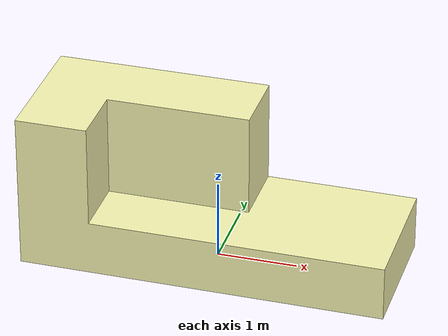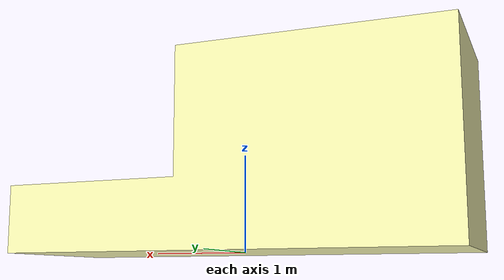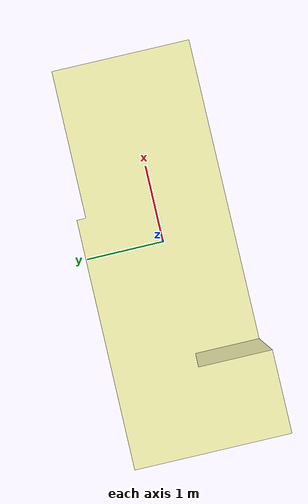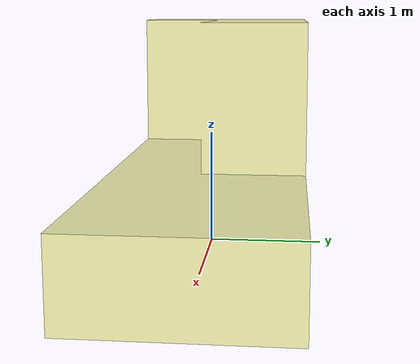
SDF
<?xml version="1.0" ?>
<sdf version="1.5">
  <model name="obstacle_10_">
    <static>true</static>
    <link name="link">
      <pose>0 0 0 0 0 0</pose>
      <collision name="collision">
        <geometry>
            <mesh>
              <uri>
                model://obstacle_10_/mesh/ostacolo_10_.stl
              </uri>
              <scale>
                0.01 0.01 0.01
              </scale>
            </mesh>
        </geometry>
      </collision>
      <visual name="visual">
        <cast_shadows>true</cast_shadows>
        <geometry>
            <mesh>
              <uri>
                model://obstacle_10_/mesh/ostacolo_10_.stl
              </uri>
              <scale>
                0.01 0.01 0.01
              </scale>
            </mesh>
        </geometry>
        <material> <!-- color soft yellow -->
          <ambient>0.9725 0.9686 0.6980 1</ambient>
          <diffuse>0.9725 0.9686 0.6980 1</diffuse>
          <specular>0 0 0 0</specular>
          <emissive>0 0 0 1</emissive>
        </material>
      </visual>
    </link>
  </model>
</sdf>
